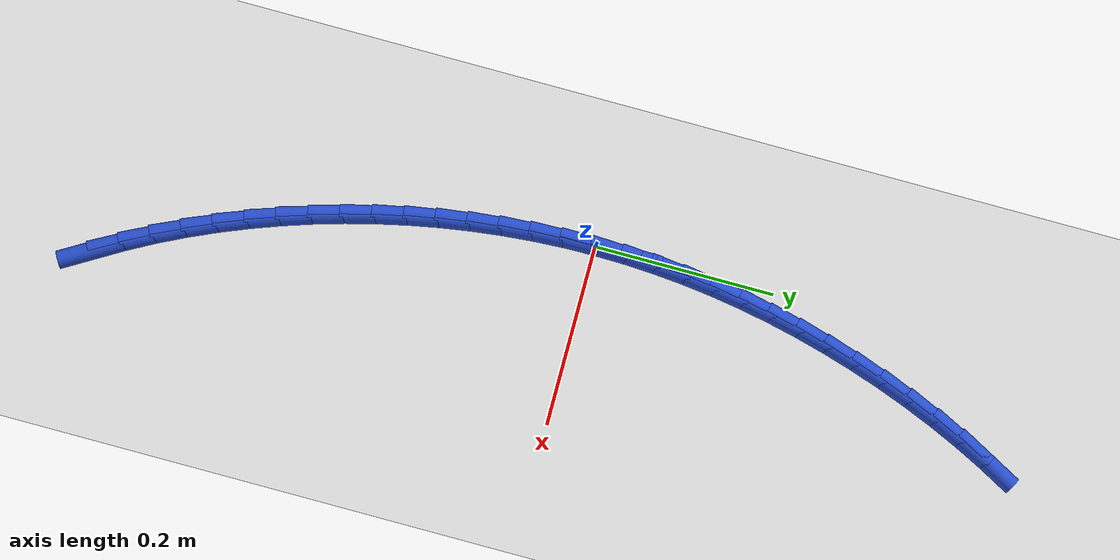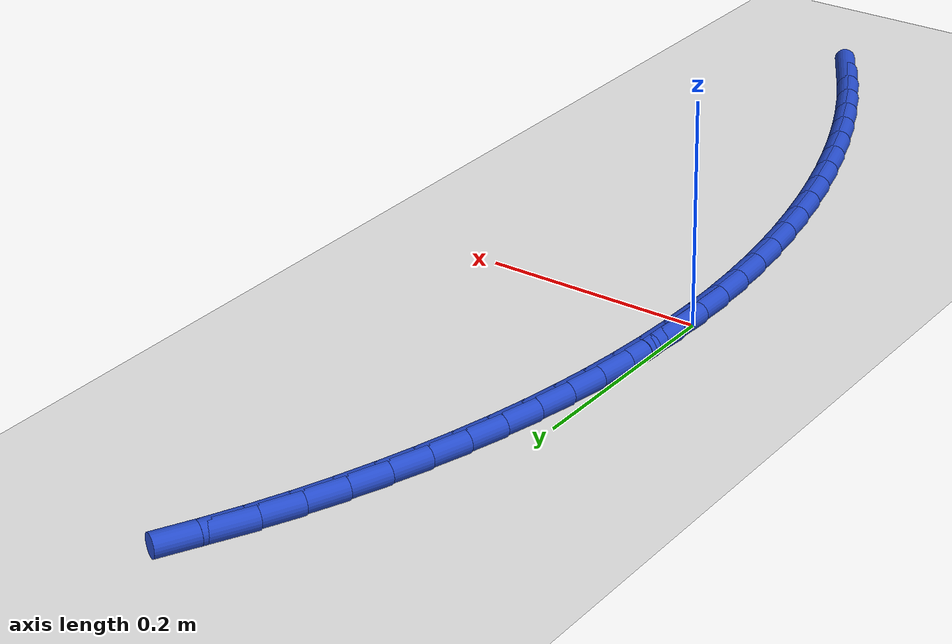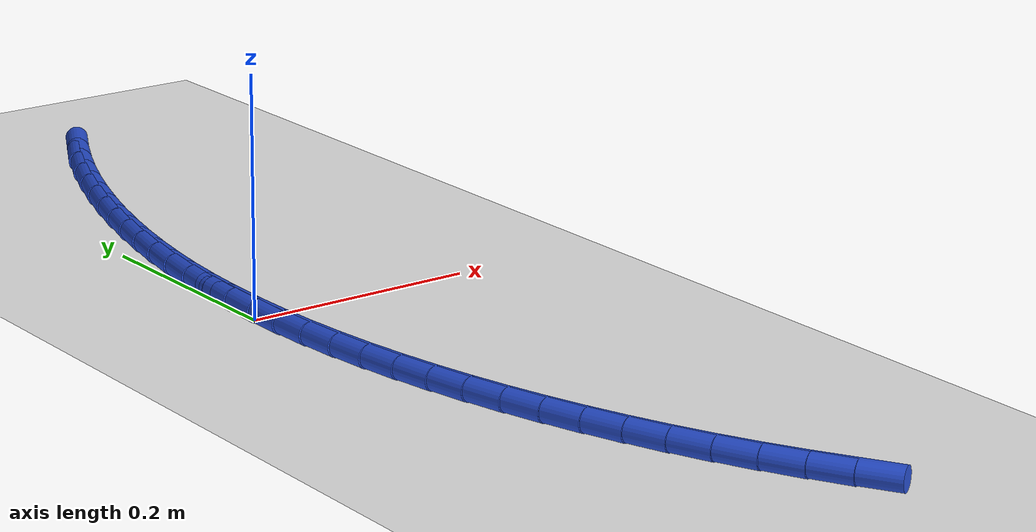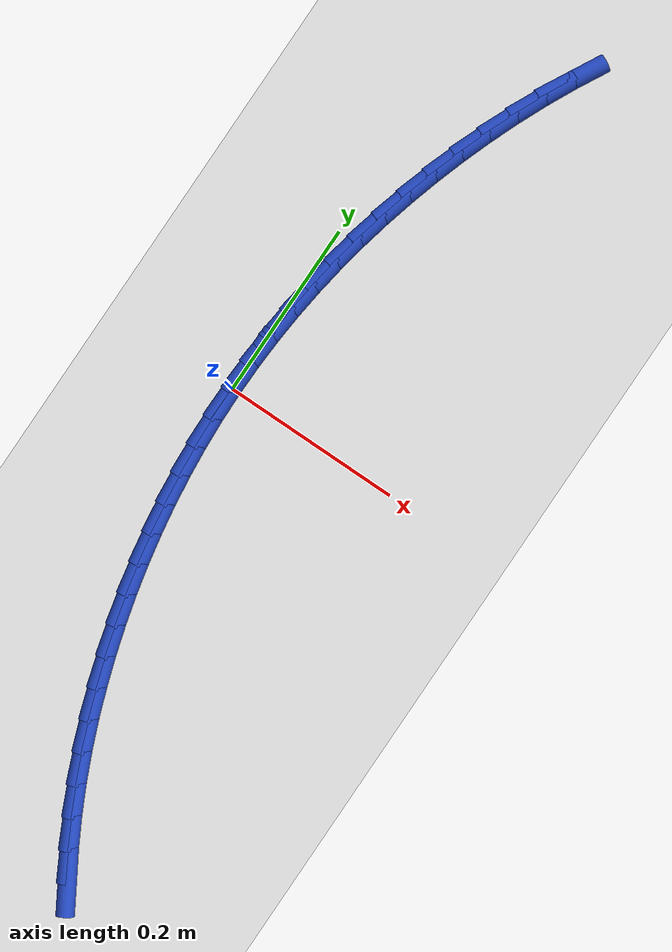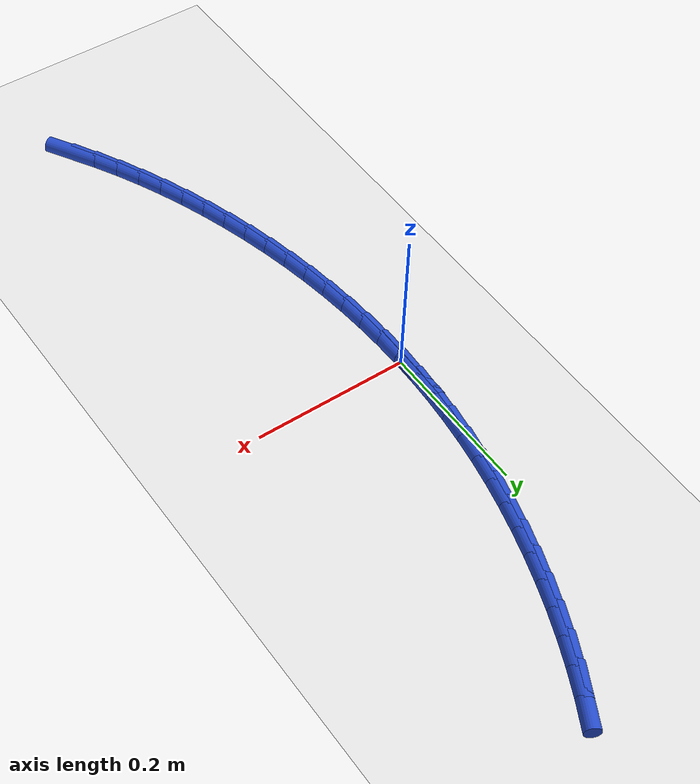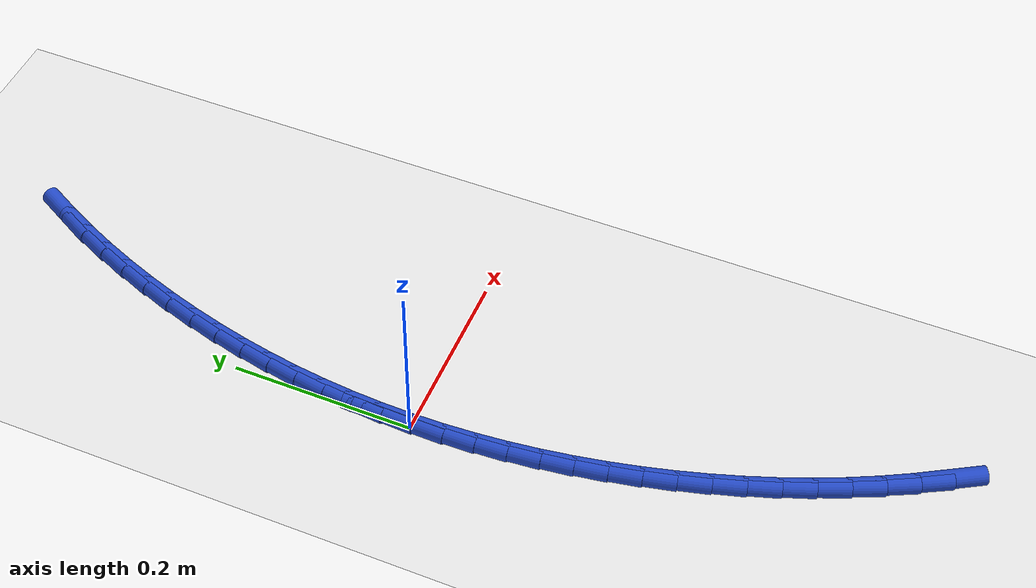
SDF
<sdf version="1.6">
 <world name="default">
  <model name="ground_plane">
   <static>1</static>
   <link name="link">
    <collision name="collision">
     <geometry><plane><normal>0 0 1</normal><size>100 100</size></plane></geometry>
     <surface><friction><ode><mu>100</mu><mu2>50</mu2></ode></friction></surface>
    </collision>
    <visual name="visual">
     <cast_shadows>0</cast_shadows>
     <geometry><plane><normal>0 0 1</normal><size>100 100</size></plane></geometry>
     <material>
      <script><uri>file://media/materials/scripts/gazebo.material</uri><name>Gazebo/WhiteGlow</name></script>
     </material>
    </visual>
   </link>
  </model>
  <model name="line">
   <link name="link_0">
    <pose>-2.2551405187698492e-17 6.245004513516506e-17 0.01 0 1.57 1.5546505836131481</pose>
    <collision name="collision">
     <geometry><cylinder><radius>0.01</radius><length>0.08</length></cylinder></geometry>
    </collision>
    <visual name="visual">
     <material>
      <script><name>Gazebo/Blue</name><uri>file://media/materials/scripts/gazebo.material</uri></script>
     </material>
     <geometry><cylinder><radius>0.01</radius><length>0.08</length></cylinder></geometry>
    </visual>
   </link>
   <link name="link_1">
    <pose>0.0005475370954749573 0.03390921744790926 0.01 0 1.57 1.5195633038309866</pose>
    <collision name="collision">
     <geometry><cylinder><radius>0.01</radius><length>0.08</length></cylinder></geometry>
    </collision>
    <visual name="visual">
     <material>
      <script><name>Gazebo/Blue</name><uri>file://media/materials/scripts/gazebo.material</uri></script>
     </material>
     <geometry><cylinder><radius>0.01</radius><length>0.08</length></cylinder></geometry>
    </visual>
   </link>
   <link name="link_2">
    <pose>0.0022830540384516295 0.06775454029161634 0.01 0 1.57 1.484695942037421</pose>
    <collision name="collision">
     <geometry><cylinder><radius>0.01</radius><length>0.08</length></cylinder></geometry>
    </collision>
    <visual name="visual">
     <material>
      <script><name>Gazebo/Blue</name><uri>file://media/materials/scripts/gazebo.material</uri></script>
     </material>
     <geometry><cylinder><radius>0.01</radius><length>0.08</length></cylinder></geometry>
    </visual>
   </link>
   <link name="link_3">
    <pose>0.005199009365725293 0.10153773623996958 0.01 0 1.57 1.4501365469653542</pose>
    <collision name="collision">
     <geometry><cylinder><radius>0.01</radius><length>0.08</length></cylinder></geometry>
    </collision>
    <visual name="visual">
     <material>
      <script><name>Gazebo/Blue</name><uri>file://media/materials/scripts/gazebo.material</uri></script>
     </material>
     <geometry><cylinder><radius>0.01</radius><length>0.08</length></cylinder></geometry>
    </visual>
   </link>
   <link name="link_4">
    <pose>0.009287861614091245 0.13526057300181726 0.01 0 1.57 1.4159686607866893</pose>
    <collision name="collision">
     <geometry><cylinder><radius>0.01</radius><length>0.08</length></cylinder></geometry>
    </collision>
    <visual name="visual">
     <material>
      <script><name>Gazebo/Blue</name><uri>file://media/materials/scripts/gazebo.material</uri></script>
     </material>
     <geometry><cylinder><radius>0.01</radius><length>0.08</length></cylinder></geometry>
    </visual>
   </link>
   <link name="link_5">
    <pose>0.014542069320344787 0.16892481828600792 0.01 0 1.57 1.3822702433500793</pose>
    <collision name="collision">
     <geometry><cylinder><radius>0.01</radius><length>0.08</length></cylinder></geometry>
    </collision>
    <visual name="visual">
     <material>
      <script><name>Gazebo/Blue</name><uri>file://media/materials/scripts/gazebo.material</uri></script>
     </material>
     <geometry><cylinder><radius>0.01</radius><length>0.08</length></cylinder></geometry>
    </visual>
   </link>
   <link name="link_6">
    <pose>0.0209540910212812 0.2025322398013895 0.01 0 1.57 1.3491127902157156</pose>
    <collision name="collision">
     <geometry><cylinder><radius>0.01</radius><length>0.08</length></cylinder></geometry>
    </collision>
    <visual name="visual">
     <material>
      <script><name>Gazebo/Blue</name><uri>file://media/materials/scripts/gazebo.material</uri></script>
     </material>
     <geometry><cylinder><radius>0.01</radius><length>0.08</length></cylinder></geometry>
    </visual>
   </link>
   <link name="link_7">
    <pose>0.02851638525369582 0.23608460525681077 0.01 0 1.57 1.3165606628394473</pose>
    <collision name="collision">
     <geometry><cylinder><radius>0.01</radius><length>0.08</length></cylinder></geometry>
    </collision>
    <visual name="visual">
     <material>
      <script><name>Gazebo/Blue</name><uri>file://media/materials/scripts/gazebo.material</uri></script>
     </material>
     <geometry><cylinder><radius>0.01</radius><length>0.08</length></cylinder></geometry>
    </visual>
   </link>
   <link name="link_8">
    <pose>0.037221410554383896 0.2695836823611198 0.01 0 1.57 1.2846706371338292</pose>
    <collision name="collision">
     <geometry><cylinder><radius>0.01</radius><length>0.08</length></cylinder></geometry>
    </collision>
    <visual name="visual">
     <material>
      <script><name>Gazebo/Blue</name><uri>file://media/materials/scripts/gazebo.material</uri></script>
     </material>
     <geometry><cylinder><radius>0.01</radius><length>0.08</length></cylinder></geometry>
    </visual>
   </link>
   <link name="link_9">
    <pose>0.04706162546014076 0.30303123882316496 0.01 0 1.57 1.2533422447960696</pose>
    <collision name="collision">
     <geometry><cylinder><radius>0.01</radius><length>0.08</length></cylinder></geometry>
    </collision>
    <visual name="visual">
     <material>
      <script><name>Gazebo/Blue</name><uri>file://media/materials/scripts/gazebo.material</uri></script>
     </material>
     <geometry><cylinder><radius>0.01</radius><length>0.08</length></cylinder></geometry>
    </visual>
   </link>
   <link name="link_10">
    <pose>0.05803112161716568 0.3364171857681819 0.01 0 1.57 1.2215018398125381</pose>
    <collision name="collision">
     <geometry><cylinder><radius>0.01</radius><length>0.08</length></cylinder></geometry>
    </collision>
    <visual name="visual">
     <material>
      <script><name>Gazebo/Blue</name><uri>file://media/materials/scripts/gazebo.material</uri></script>
     </material>
     <geometry><cylinder><radius>0.01</radius><length>0.08</length></cylinder></geometry>
    </visual>
   </link>
   <link name="link_11">
    <pose>0.07013528278180435 0.36964945215426603 0.01 0 1.57 1.1885061071895433</pose>
    <collision name="collision">
     <geometry><cylinder><radius>0.01</radius><length>0.08</length></cylinder></geometry>
    </collision>
    <visual name="visual">
     <material>
      <script><name>Gazebo/Blue</name><uri>file://media/materials/scripts/gazebo.material</uri></script>
     </material>
     <geometry><cylinder><radius>0.01</radius><length>0.08</length></cylinder></geometry>
    </visual>
   </link>
   <link name="link_12">
    <pose>0.08338426484035553 0.40260132066433907 0.01 0 1.57 1.1541203871175276</pose>
    <collision name="collision">
     <geometry><cylinder><radius>0.01</radius><length>0.08</length></cylinder></geometry>
    </collision>
    <visual name="visual">
     <material>
      <script><name>Gazebo/Blue</name><uri>file://media/materials/scripts/gazebo.material</uri></script>
     </material>
     <geometry><cylinder><radius>0.01</radius><length>0.08</length></cylinder></geometry>
    </visual>
   </link>
   <link name="link_13">
    <pose>0.09778824064557189 0.4351459508026929 0.01 0 1.57 1.1181077435158975</pose>
    <collision name="collision">
     <geometry><cylinder><radius>0.01</radius><length>0.08</length></cylinder></geometry>
    </collision>
    <visual name="visual">
     <material>
      <script><name>Gazebo/Blue</name><uri>file://media/materials/scripts/gazebo.material</uri></script>
     </material>
     <geometry><cylinder><radius>0.01</radius><length>0.08</length></cylinder></geometry>
    </visual>
   </link>
   <link name="link_14">
    <pose>0.11335738305020596 0.4671565020736193 0.01 0 1.57 1.08022633529933</pose>
    <collision name="collision">
     <geometry><cylinder><radius>0.01</radius><length>0.08</length></cylinder></geometry>
    </collision>
    <visual name="visual">
     <material>
      <script><name>Gazebo/Blue</name><uri>file://media/materials/scripts/gazebo.material</uri></script>
     </material>
     <geometry><cylinder><radius>0.01</radius><length>0.08</length></cylinder></geometry>
    </visual>
   </link>
   <link name="link_184">
    <pose>0.1453749107701434 -0.5217568636915698 0.01 0 1.57 -1.0365780484514189</pose>
    <collision name="collision">
     <geometry><cylinder><radius>0.01</radius><length>0.08</length></cylinder></geometry>
    </collision>
    <visual name="visual">
     <material>
      <script><name>Gazebo/Blue</name><uri>file://media/materials/scripts/gazebo.material</uri></script>
     </material>
     <geometry><cylinder><radius>0.01</radius><length>0.08</length></cylinder></geometry>
    </visual>
   </link>
   <link name="link_185">
    <pose>0.1279817651442298 -0.492356560607743 0.01 0 1.57 -1.0761080804175327</pose>
    <collision name="collision">
     <geometry><cylinder><radius>0.01</radius><length>0.08</length></cylinder></geometry>
    </collision>
    <visual name="visual">
     <material>
      <script><name>Gazebo/Blue</name><uri>file://media/materials/scripts/gazebo.material</uri></script>
     </material>
     <geometry><cylinder><radius>0.01</radius><length>0.08</length></cylinder></geometry>
    </visual>
   </link>
   <link name="link_186">
    <pose>0.111728624384998 -0.46222608817200767 0.01 0 1.57 -1.1141344152683985</pose>
    <collision name="collision">
     <geometry><cylinder><radius>0.01</radius><length>0.08</length></cylinder></geometry>
    </collision>
    <visual name="visual">
     <material>
      <script><name>Gazebo/Blue</name><uri>file://media/materials/scripts/gazebo.material</uri></script>
     </material>
     <geometry><cylinder><radius>0.01</radius><length>0.08</length></cylinder></geometry>
    </visual>
   </link>
   <link name="link_187">
    <pose>0.0966021361552073 -0.43143727120357583 0.01 0 1.57 -1.1507478578104444</pose>
    <collision name="collision">
     <geometry><cylinder><radius>0.01</radius><length>0.08</length></cylinder></geometry>
    </collision>
    <visual name="visual">
     <material>
      <script><name>Gazebo/Blue</name><uri>file://media/materials/scripts/gazebo.material</uri></script>
     </material>
     <geometry><cylinder><radius>0.01</radius><length>0.08</length></cylinder></geometry>
    </visual>
   </link>
   <link name="link_188">
    <pose>0.08258894811761679 -0.40006193452165906 0.01 0 1.57 -1.1860469266520222</pose>
    <collision name="collision">
     <geometry><cylinder><radius>0.01</radius><length>0.08</length></cylinder></geometry>
    </collision>
    <visual name="visual">
     <material>
      <script><name>Gazebo/Blue</name><uri>file://media/materials/scripts/gazebo.material</uri></script>
     </material>
     <geometry><cylinder><radius>0.01</radius><length>0.08</length></cylinder></geometry>
    </visual>
   </link>
   <link name="link_189">
    <pose>0.06967570793498566 -0.3681719029454695 0.01 0 1.57 -1.220135637519329</pose>
    <collision name="collision">
     <geometry><cylinder><radius>0.01</radius><length>0.08</length></cylinder></geometry>
    </collision>
    <visual name="visual">
     <material>
      <script><name>Gazebo/Blue</name><uri>file://media/materials/scripts/gazebo.material</uri></script>
     </material>
     <geometry><cylinder><radius>0.01</radius><length>0.08</length></cylinder></geometry>
    </visual>
   </link>
   <link name="link_190">
    <pose>0.0578490632700731 -0.33583900129421884 0.01 0 1.57 -1.2531228238585006</pose>
    <collision name="collision">
     <geometry><cylinder><radius>0.01</radius><length>0.08</length></cylinder></geometry>
    </collision>
    <visual name="visual">
     <material>
      <script><name>Gazebo/Blue</name><uri>file://media/materials/scripts/gazebo.material</uri></script>
     </material>
     <geometry><cylinder><radius>0.01</radius><length>0.08</length></cylinder></geometry>
    </visual>
   </link>
   <link name="link_191">
    <pose>0.04709568847688324 -0.30313502501016204 0.01 0 1.57 -1.2853959367853562</pose>
    <collision name="collision">
     <geometry><cylinder><radius>0.01</radius><length>0.08</length></cylinder></geometry>
    </collision>
    <visual name="visual">
     <material>
      <script><name>Gazebo/Blue</name><uri>file://media/materials/scripts/gazebo.material</uri></script>
     </material>
     <geometry><cylinder><radius>0.01</radius><length>0.08</length></cylinder></geometry>
    </visual>
   </link>
   <link name="link_192">
    <pose>0.037409765317301086 -0.2701235067213346 0.01 0 1.57 -1.3176952887362836</pose>
    <collision name="collision">
     <geometry><cylinder><radius>0.01</radius><length>0.08</length></cylinder></geometry>
    </collision>
    <visual name="visual">
     <material>
      <script><name>Gazebo/Blue</name><uri>file://media/materials/scripts/gazebo.material</uri></script>
     </material>
     <geometry><cylinder><radius>0.01</radius><length>0.08</length></cylinder></geometry>
    </visual>
   </link>
   <link name="link_193">
    <pose>0.02880324004779481 -0.23684842707181075 0.01 0 1.57 -1.350173113735602</pose>
    <collision name="collision">
     <geometry><cylinder><radius>0.01</radius><length>0.08</length></cylinder></geometry>
    </collision>
    <visual name="visual">
     <material>
      <script><name>Gazebo/Blue</name><uri>file://media/materials/scripts/gazebo.material</uri></script>
     </material>
     <geometry><cylinder><radius>0.01</radius><length>0.08</length></cylinder></geometry>
    </visual>
   </link>
   <link name="link_194">
    <pose>0.021290628095943436 -0.20335093902080945 0.01 0 1.57 -1.382884735280444</pose>
    <collision name="collision">
     <geometry><cylinder><radius>0.01</radius><length>0.08</length></cylinder></geometry>
    </collision>
    <visual name="visual">
     <material>
      <script><name>Gazebo/Blue</name><uri>file://media/materials/scripts/gazebo.material</uri></script>
     </material>
     <geometry><cylinder><radius>0.01</radius><length>0.08</length></cylinder></geometry>
    </visual>
   </link>
   <link name="link_195">
    <pose>0.014886444889325744 -0.16967219552754917 0.01 0 1.57 -1.4158848996905002</pose>
    <collision name="collision">
     <geometry><cylinder><radius>0.01</radius><length>0.08</length></cylinder></geometry>
    </collision>
    <visual name="visual">
     <material>
      <script><name>Gazebo/Blue</name><uri>file://media/materials/scripts/gazebo.material</uri></script>
     </material>
     <geometry><cylinder><radius>0.01</radius><length>0.08</length></cylinder></geometry>
    </visual>
   </link>
   <link name="link_196">
    <pose>0.009605205855520514 -0.13585334955124795 0.01 0 1.57 -1.4492275269985604</pose>
    <collision name="collision">
     <geometry><cylinder><radius>0.01</radius><length>0.08</length></cylinder></geometry>
    </collision>
    <visual name="visual">
     <material>
      <script><name>Gazebo/Blue</name><uri>file://media/materials/scripts/gazebo.material</uri></script>
     </material>
     <geometry><cylinder><radius>0.01</radius><length>0.08</length></cylinder></geometry>
    </visual>
   </link>
   <link name="link_197">
    <pose>0.005461426422106538 -0.10193555405112417 0.01 0 1.57 -1.4829654143704258</pose>
    <collision name="collision">
     <geometry><cylinder><radius>0.01</radius><length>0.08</length></cylinder></geometry>
    </collision>
    <visual name="visual">
     <material>
      <script><name>Gazebo/Blue</name><uri>file://media/materials/scripts/gazebo.material</uri></script>
     </material>
     <geometry><cylinder><radius>0.01</radius><length>0.08</length></cylinder></geometry>
    </visual>
   </link>
   <link name="link_198">
    <pose>0.0024696220166625974 -0.06795996198639603 0.01 0 1.57 -1.5171498828553693</pose>
    <collision name="collision">
     <geometry><cylinder><radius>0.01</radius><length>0.08</length></cylinder></geometry>
    </collision>
    <visual name="visual">
     <material>
      <script><name>Gazebo/Blue</name><uri>file://media/materials/scripts/gazebo.material</uri></script>
     </material>
     <geometry><cylinder><radius>0.01</radius><length>0.08</length></cylinder></geometry>
    </visual>
   </link>
   <link name="link_199">
    <pose>0.0006443080667674853 -0.0339677263162819 0.01 0 1.57 -1.5518303587853446</pose>
    <collision name="collision">
     <geometry><cylinder><radius>0.01</radius><length>0.08</length></cylinder></geometry>
    </collision>
    <visual name="visual">
     <material>
      <script><name>Gazebo/Blue</name><uri>file://media/materials/scripts/gazebo.material</uri></script>
     </material>
     <geometry><cylinder><radius>0.01</radius><length>0.08</length></cylinder></geometry>
    </visual>
   </link>
   <link name="link_200">
    <pose>-1.5612511283791264e-17 5.551115123125783e-17 0.01 0 1.57 1.5545387715128678</pose>
    <collision name="collision">
     <geometry><cylinder><radius>0.01</radius><length>0.08</length></cylinder></geometry>
    </collision>
    <visual name="visual">
     <material>
      <script><name>Gazebo/Blue</name><uri>file://media/materials/scripts/gazebo.material</uri></script>
     </material>
     <geometry><cylinder><radius>0.01</radius><length>0.08</length></cylinder></geometry>
    </visual>
   </link>
   <link name="link_201">
    <pose>0.0005512132439389047 0.033902064003232285 0.01 0 1.57 1.5545387715128676</pose>
    <collision name="collision">
     <geometry><cylinder><radius>0.01</radius><length>0.08</length></cylinder></geometry>
    </collision>
    <visual name="visual">
     <material>
      <script><name>Gazebo/Blue</name><uri>file://media/materials/scripts/gazebo.material</uri></script>
     </material>
     <geometry><cylinder><radius>0.01</radius><length>0.08</length></cylinder></geometry>
    </visual>
   </link>
  </model>
 </world>
</sdf>
